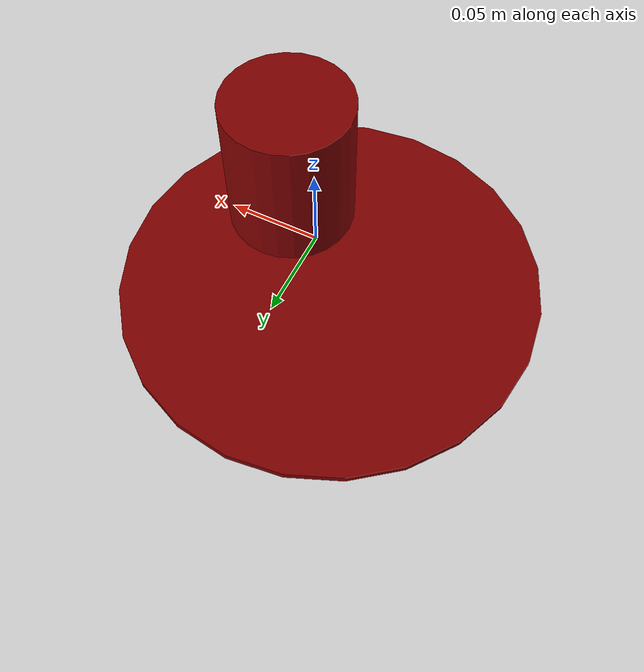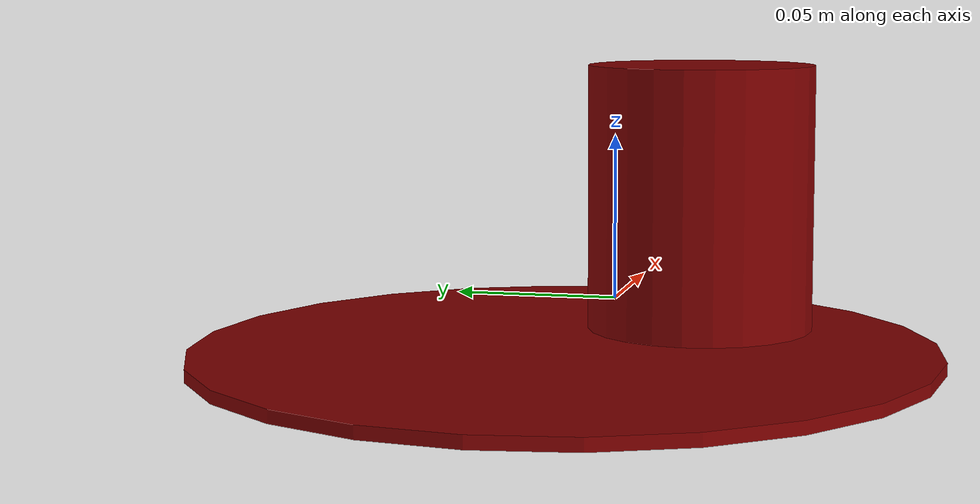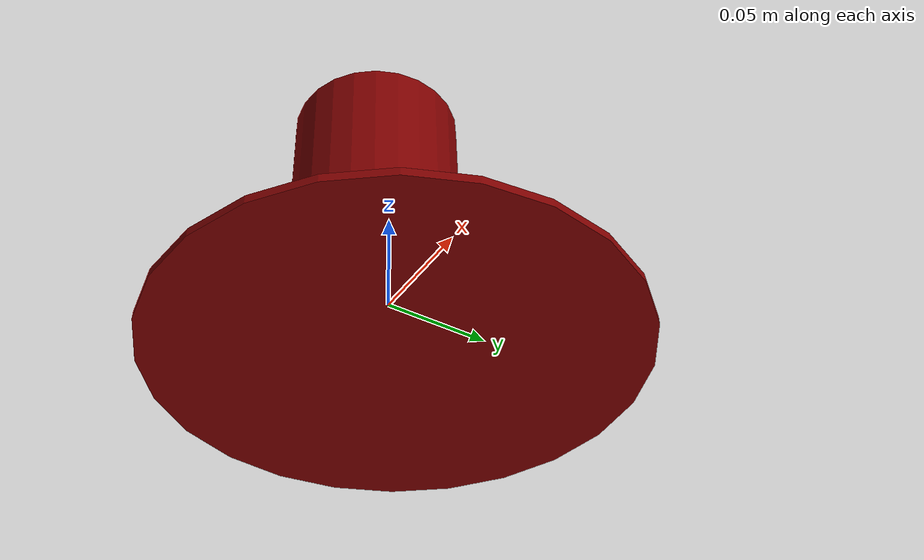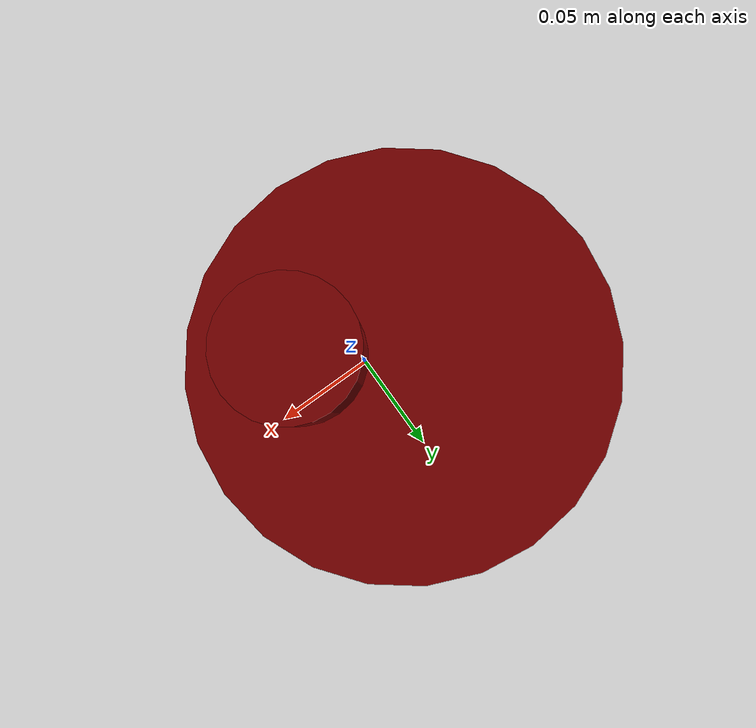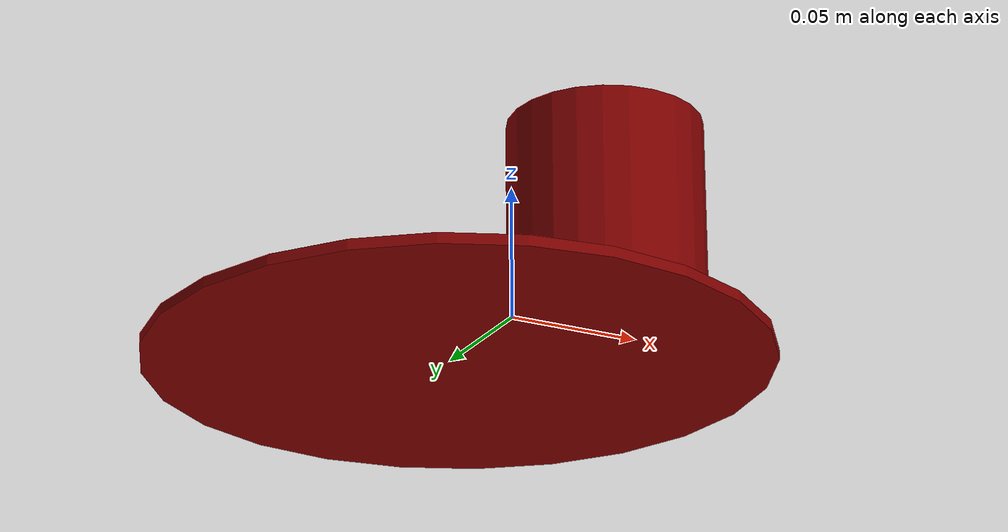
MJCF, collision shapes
<mujoco model="model">
  <option timestep="0.002" gravity="0.0 0.0 -9.81"/>
  <compiler angle="radian"/>
  <asset>
    <texture file="visuals/T_BC001.png" name="lid_material" type="2d"/>
    <material name="lid_material" rgba="1 1 1 1.0" texture="lid_material" shininess="0.4472135901451111" specular="2"/>
    <mesh file="visuals/lid.obj" name="lid_vis"/>
  </asset>
  <default>
    <default class="visual">
      <geom conaffinity="0" contype="0" group="1" type="mesh"/>
    </default>
    <default class="collision">
      <geom group="0" rgba="0.5 0 0 0.5"/>
    </default>
    <default class="spawn">
      <geom group="0" rgba="1 1 1 0.5" contype="0" conaffinity="0"/>
      <site group="0" rgba="1 1 1 0.5"/>
    </default>
    <default class="region">
      <geom group="1" conaffinity="0" contype="0" rgba="0 1 0 0"/>
    </default>
  </default>
  <worldbody>
    <body>
      <body name="object">
        <geom mesh="lid_vis" type="mesh" solimp="0.998 0.998 0.001" solref="0.001 1" friction="0.95 0.3 0.1" class="visual" material="lid_material"/>
        <geom class="collision" type="cylinder" pos="-0.015098481872015204 0.012569689759779859 -0.014977051042040168" size="0.1136881560087204 0.0019425016362220049" quat="1.0 0.0 0.0 0.0" density="1000.0"/>
        <geom class="collision" name="handle_main" type="cylinder" pos="0.026384958127984793 -0.02235439024022014 0.028749078957959834" size="0.03576243296265602 0.041802436113357544" quat="1.0 0.0 0.0 0.0" density="1000.0"/>
        <geom class="region" name="reg_main" density="0" type="box" pos="-0.017261709999999993 0.014814209999999994 0.022151199999999996" size="0.1184925 0.1184585 0.0494675"/>
      </body>
    </body>
  </worldbody>
</mujoco>
